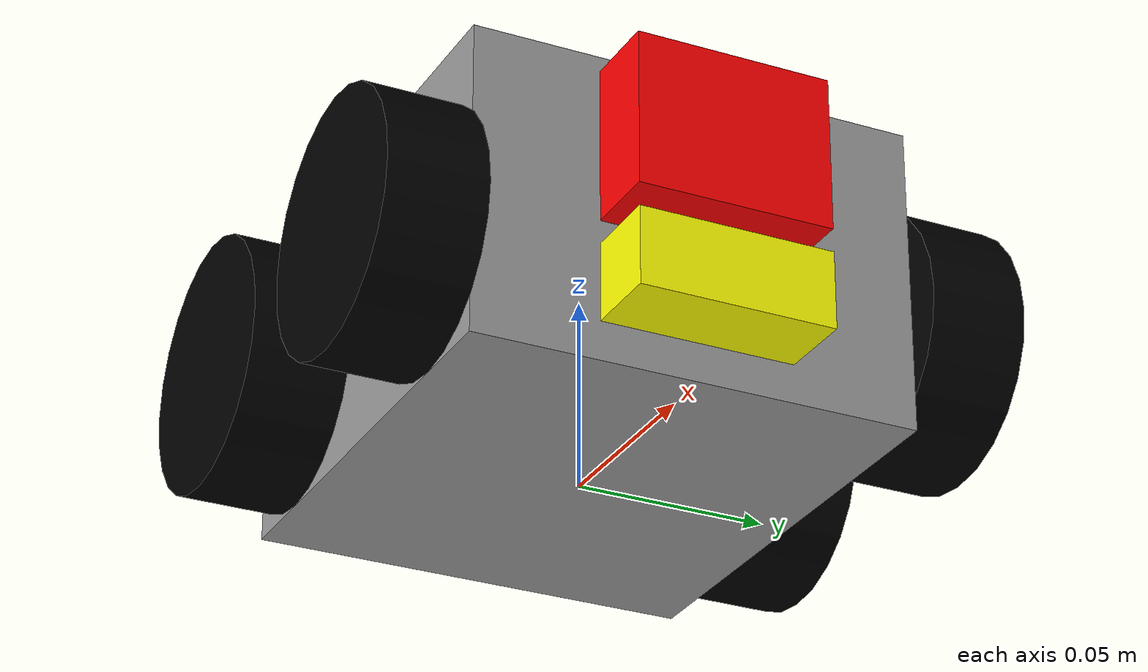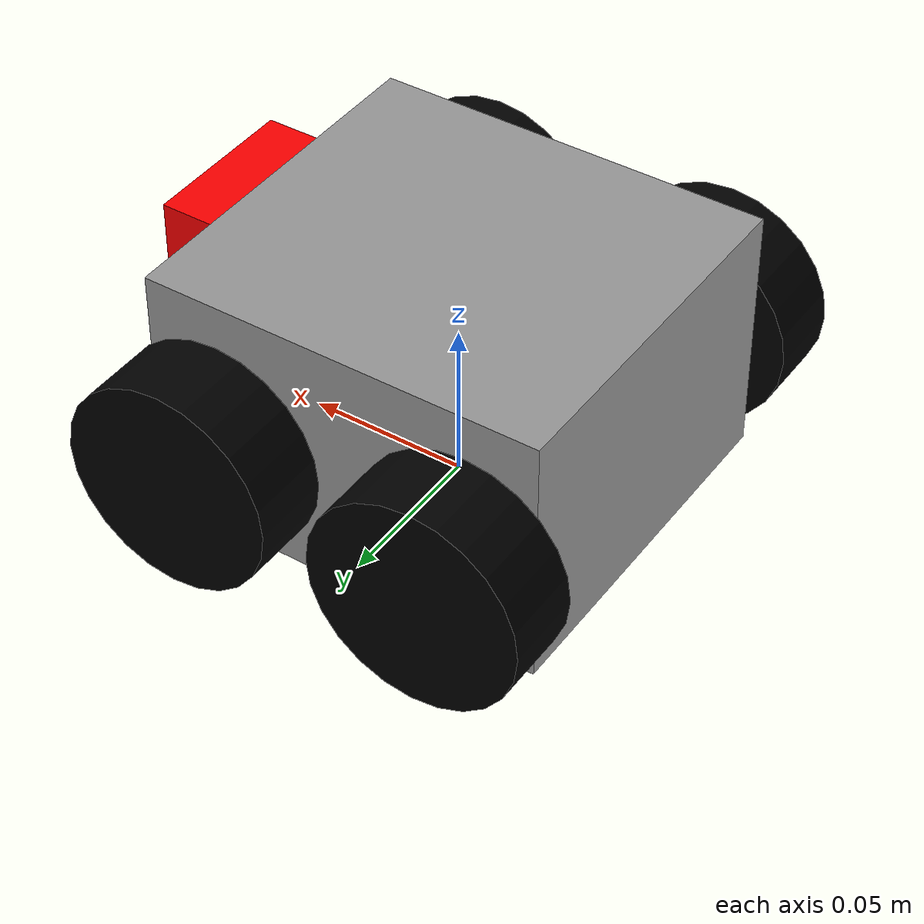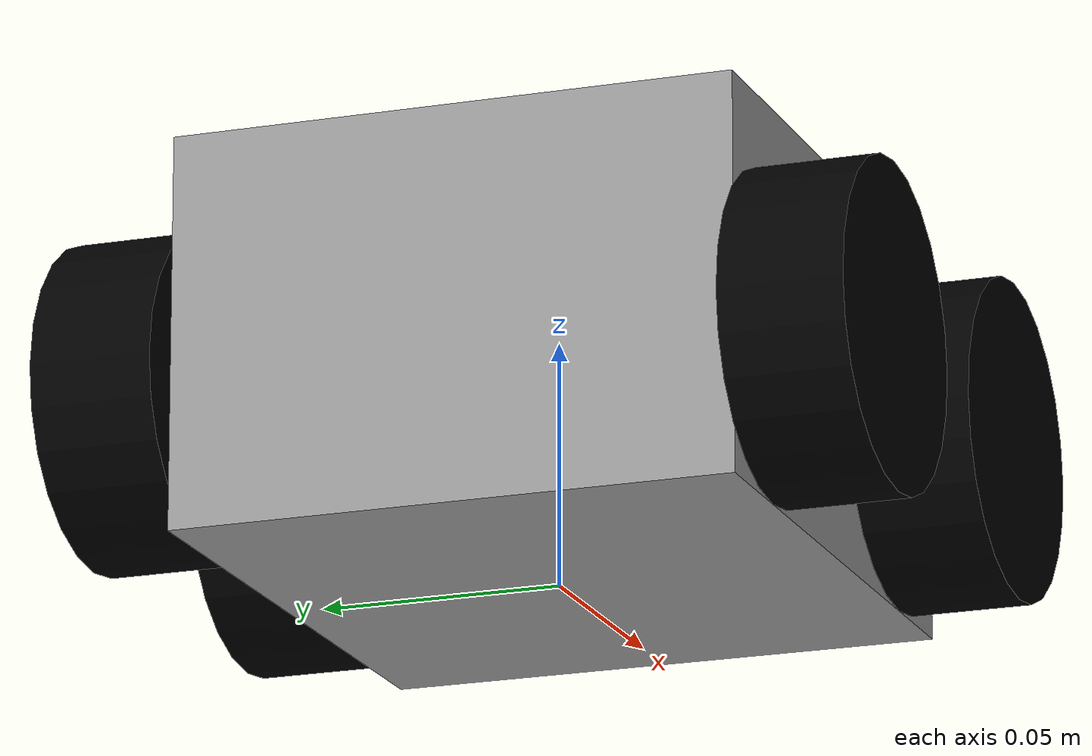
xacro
<?xml version="1.0"?>
<robot name="simple_bot" xmlns:xacro="http://www.ros.org/wiki/xacro">

  <!-- 기본 파라미터 -->
  <xacro:property name="wheel_radius" value="0.033"/>
  <xacro:property name="wheel_width" value="0.025"/>
  <xacro:property name="body_length" value="0.125"/> <!-- X-axis length: 12.5 cm -->
  <xacro:property name="body_width"  value="0.115"/> <!-- Y-axis width: 11.5 cm -->
  <xacro:property name="body_height" value="0.08"/>  <!-- Z-axis height: 8 cm -->
  <xacro:property name="wheel_base" value="0.08"/> <!-- 앞뒤 바퀴 간격 -->

  <!-- ===================== base_link ===================== -->
  <link name="base_link">
    <visual>
      <geometry>
        <box size="${body_length} ${body_width} ${body_height}"/>
      </geometry>
      <origin xyz="0 0 ${body_height/2}" rpy="0 0 0"/>
      <material name="Gray">
        <color rgba="0.6 0.6 0.6 1.0"/>
      </material>
    </visual>
    <collision>
      <geometry>
        <box size="${body_length} ${body_width} ${body_height}"/>
      </geometry>
    </collision>
  </link>

  <!-- ===================== Left Wheels ===================== -->
  <!-- Left Front Wheel -->
  <link name="left_front_wheel_link">
    <visual>
      <geometry>
        <cylinder radius="${wheel_radius}" length="${wheel_width}"/>
      </geometry>
      <origin xyz="0 0 0" rpy="1.5708 0 0"/>
      <material name="Black">
        <color rgba="0 0 0 1"/>
      </material>
    </visual>
  </link>
  <joint name="left_front_wheel_joint" type="continuous">
    <parent link="base_link"/>
    <child link="left_front_wheel_link"/>
    <origin xyz="${wheel_base/2} ${body_width/2 + wheel_width/2} ${wheel_radius}" rpy="0 0 0"/>
    <axis xyz="0 1 0"/>
  </joint>

  <!-- Left Rear Wheel -->
  <link name="left_rear_wheel_link">
    <visual>
      <geometry>
        <cylinder radius="${wheel_radius}" length="${wheel_width}"/>
      </geometry>
      <origin xyz="0 0 0" rpy="1.5708 0 0"/>
      <material name="Black">
        <color rgba="0 0 0 1"/>
      </material>
    </visual>
  </link>
  <joint name="left_rear_wheel_joint" type="continuous">
    <parent link="base_link"/>
    <child link="left_rear_wheel_link"/>
    <origin xyz="-${wheel_base/2} ${body_width/2 + wheel_width/2} ${wheel_radius}" rpy="0 0 0"/>
    <axis xyz="0 1 0"/>
  </joint>

  <!-- ===================== Right Wheels ===================== -->
  <!-- Right Front Wheel -->
  <link name="right_front_wheel_link">
    <visual>
      <geometry>
        <cylinder radius="${wheel_radius}" length="${wheel_width}"/>
      </geometry>
      <origin xyz="0 0 0" rpy="1.5708 0 0"/>
      <material name="Black">
        <color rgba="0 0 0 1"/>
      </material>
    </visual>
  </link>
  <joint name="right_front_wheel_joint" type="continuous">
    <parent link="base_link"/>
    <child link="right_front_wheel_link"/>
    <origin xyz="${wheel_base/2} -${body_width/2 + wheel_width/2} ${wheel_radius}" rpy="0 0 0"/>
    <axis xyz="0 1 0"/>
  </joint>

  <!-- Right Rear Wheel -->
  <link name="right_rear_wheel_link">
    <visual>
      <geometry>
        <cylinder radius="${wheel_radius}" length="${wheel_width}"/>
      </geometry>
      <origin xyz="0 0 0" rpy="1.5708 0 0"/>
      <material name="Black">
        <color rgba="0 0 0 1"/>
      </material>
    </visual>
  </link>
  <joint name="right_rear_wheel_joint" type="continuous">
    <parent link="base_link"/>
    <child link="right_rear_wheel_link"/>
    <origin xyz="-${wheel_base/2} -${body_width/2 + wheel_width/2} ${wheel_radius}" rpy="0 0 0"/>
    <axis xyz="0 1 0"/>
  </joint>

  <!-- ===================== Ultrasonic Sensor ===================== -->
  <link name="ultrasonic_link">
    <visual>
      <geometry>
        <box size="0.02 0.05 0.02"/>
      </geometry>
      <origin xyz="${(body_length/2) + 0.01} 0 ${body_height/4}" rpy="0 0 0"/>
      <material name="Yellow">
        <color rgba="1.0 1.0 0.0 1.0"/>
      </material>
    </visual>
  </link>
  <joint name="ultrasonic_link" type="fixed">
    <parent link="base_link"/>
    <child link="ultrasonic_link"/>
    <origin xyz="0 0 0" rpy="0 0 0"/>
  </joint>

  <!-- ===================== Camera ===================== -->
  <link name="camera_link">
    <visual>
      <geometry>
        <box size="0.02 0.05 0.04"/>
      </geometry>
      <origin xyz="${(body_length/2) + 0.01} 0 ${body_height*0.7}" rpy="0 0 0"/>
      <material name="Red">
        <color rgba="1.0 0.0 0.0 1.0"/>
      </material>
    </visual>
  </link>
  <joint name="camera_joint" type="fixed">
    <parent link="base_link"/>
    <child link="camera_link"/>
    <origin xyz="0 0 0" rpy="0 0 0"/>
  </joint>

</robot>
